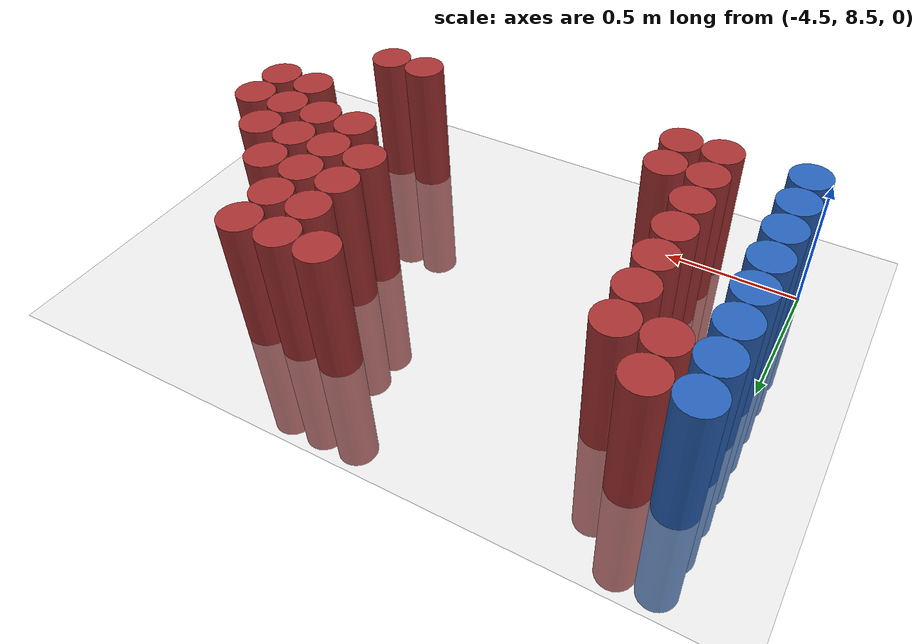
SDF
<sdf version="1.6">
 <world name="default">
  <model name="ground_plane">
   <static>1</static>
   <link name="link">
    <collision name="collision">
     <geometry><plane><normal>0 0 1</normal><size>100 100</size></plane></geometry>
     <surface><friction><ode><mu>100</mu><mu2>50</mu2></ode></friction></surface>
    </collision>
    <visual name="visual">
     <cast_shadows>0</cast_shadows>
     <geometry><plane><normal>0 0 1</normal><size>100 100</size></plane></geometry>
     <material>
      <script><uri>file://media/materials/scripts/gazebo.material</uri><name>Gazebo/Grey</name></script>
     </material>
    </visual>
   </link>
  </model>
  <model name="unit_cylinder_118">
   <static>1</static>
   <pose>-4.425000 8.475000 0.000000 0.000000 0.000000 0.000000</pose>
   <link name="link">
    <inertial>
     <mass>1</mass>
     <inertia><ixx>0.145833</ixx><ixy>0</ixy><ixz>0</ixz><iyy>0.145833</iyy><iyz>0</iyz><izz>0.125</izz></inertia>
    </inertial>
    <collision name="collision">
     <geometry><cylinder><radius>0.075000</radius><length>1</length></cylinder></geometry>
    </collision>
    <visual name="visual">
     <geometry><cylinder><radius>0.075000</radius><length>1</length></cylinder></geometry>
     <material>
      <ambient>0.152000 0.379000 0.720000 1</ambient>
      <diffuse>0.152000 0.379000 0.720000 1</diffuse>
     </material>
     <material>
      <script><name>Gazebo/Grey</name><uri>file://media/materials/scripts/gazebo.material</uri></script>
     </material>
    </visual>
    <sensor name="sensor_contact" type="contact"><contact><collision>collision</collision></contact></sensor>
   </link>
   <plugin filename="gz-sim-touchplugin-system" name="gz::sim::systems::TouchPlugin">
    <target>robot</target>
    <namespace>robot</namespace>
    <time>0.001</time>
    <enabled>true</enabled>
   </plugin>
  </model>
  <model name="unit_cylinder_119">
   <static>1</static>
   <pose>-4.425000 8.625000 0.000000 0.000000 0.000000 0.000000</pose>
   <link name="link">
    <inertial>
     <mass>1</mass>
     <inertia><ixx>0.145833</ixx><ixy>0</ixy><ixz>0</ixz><iyy>0.145833</iyy><iyz>0</iyz><izz>0.125</izz></inertia>
    </inertial>
    <collision name="collision">
     <geometry><cylinder><radius>0.075000</radius><length>1</length></cylinder></geometry>
    </collision>
    <visual name="visual">
     <geometry><cylinder><radius>0.075000</radius><length>1</length></cylinder></geometry>
     <material>
      <ambient>0.152000 0.379000 0.720000 1</ambient>
      <diffuse>0.152000 0.379000 0.720000 1</diffuse>
     </material>
     <material>
      <script><name>Gazebo/Grey</name><uri>file://media/materials/scripts/gazebo.material</uri></script>
     </material>
    </visual>
    <sensor name="sensor_contact" type="contact"><contact><collision>collision</collision></contact></sensor>
   </link>
   <plugin filename="gz-sim-touchplugin-system" name="gz::sim::systems::TouchPlugin">
    <target>robot</target>
    <namespace>robot</namespace>
    <time>0.001</time>
    <enabled>true</enabled>
   </plugin>
  </model>
  <model name="unit_cylinder_120">
   <static>1</static>
   <pose>-4.425000 8.775000 0.000000 0.000000 0.000000 0.000000</pose>
   <link name="link">
    <inertial>
     <mass>1</mass>
     <inertia><ixx>0.145833</ixx><ixy>0</ixy><ixz>0</ixz><iyy>0.145833</iyy><iyz>0</iyz><izz>0.125</izz></inertia>
    </inertial>
    <collision name="collision">
     <geometry><cylinder><radius>0.075000</radius><length>1</length></cylinder></geometry>
    </collision>
    <visual name="visual">
     <geometry><cylinder><radius>0.075000</radius><length>1</length></cylinder></geometry>
     <material>
      <ambient>0.152000 0.379000 0.720000 1</ambient>
      <diffuse>0.152000 0.379000 0.720000 1</diffuse>
     </material>
     <material>
      <script><name>Gazebo/Grey</name><uri>file://media/materials/scripts/gazebo.material</uri></script>
     </material>
    </visual>
    <sensor name="sensor_contact" type="contact"><contact><collision>collision</collision></contact></sensor>
   </link>
   <plugin filename="gz-sim-touchplugin-system" name="gz::sim::systems::TouchPlugin">
    <target>robot</target>
    <namespace>robot</namespace>
    <time>0.001</time>
    <enabled>true</enabled>
   </plugin>
  </model>
  <model name="unit_cylinder_121">
   <static>1</static>
   <pose>-4.425000 8.925000 0.000000 0.000000 0.000000 0.000000</pose>
   <link name="link">
    <inertial>
     <mass>1</mass>
     <inertia><ixx>0.145833</ixx><ixy>0</ixy><ixz>0</ixz><iyy>0.145833</iyy><iyz>0</iyz><izz>0.125</izz></inertia>
    </inertial>
    <collision name="collision">
     <geometry><cylinder><radius>0.075000</radius><length>1</length></cylinder></geometry>
    </collision>
    <visual name="visual">
     <geometry><cylinder><radius>0.075000</radius><length>1</length></cylinder></geometry>
     <material>
      <ambient>0.152000 0.379000 0.720000 1</ambient>
      <diffuse>0.152000 0.379000 0.720000 1</diffuse>
     </material>
     <material>
      <script><name>Gazebo/Grey</name><uri>file://media/materials/scripts/gazebo.material</uri></script>
     </material>
    </visual>
    <sensor name="sensor_contact" type="contact"><contact><collision>collision</collision></contact></sensor>
   </link>
   <plugin filename="gz-sim-touchplugin-system" name="gz::sim::systems::TouchPlugin">
    <target>robot</target>
    <namespace>robot</namespace>
    <time>0.001</time>
    <enabled>true</enabled>
   </plugin>
  </model>
  <model name="unit_cylinder_122">
   <static>1</static>
   <pose>-4.425000 9.075000 0.000000 0.000000 0.000000 0.000000</pose>
   <link name="link">
    <inertial>
     <mass>1</mass>
     <inertia><ixx>0.145833</ixx><ixy>0</ixy><ixz>0</ixz><iyy>0.145833</iyy><iyz>0</iyz><izz>0.125</izz></inertia>
    </inertial>
    <collision name="collision">
     <geometry><cylinder><radius>0.075000</radius><length>1</length></cylinder></geometry>
    </collision>
    <visual name="visual">
     <geometry><cylinder><radius>0.075000</radius><length>1</length></cylinder></geometry>
     <material>
      <ambient>0.152000 0.379000 0.720000 1</ambient>
      <diffuse>0.152000 0.379000 0.720000 1</diffuse>
     </material>
     <material>
      <script><name>Gazebo/Grey</name><uri>file://media/materials/scripts/gazebo.material</uri></script>
     </material>
    </visual>
    <sensor name="sensor_contact" type="contact"><contact><collision>collision</collision></contact></sensor>
   </link>
   <plugin filename="gz-sim-touchplugin-system" name="gz::sim::systems::TouchPlugin">
    <target>robot</target>
    <namespace>robot</namespace>
    <time>0.001</time>
    <enabled>true</enabled>
   </plugin>
  </model>
  <model name="unit_cylinder_123">
   <static>1</static>
   <pose>-4.425000 9.225000 0.000000 0.000000 0.000000 0.000000</pose>
   <link name="link">
    <inertial>
     <mass>1</mass>
     <inertia><ixx>0.145833</ixx><ixy>0</ixy><ixz>0</ixz><iyy>0.145833</iyy><iyz>0</iyz><izz>0.125</izz></inertia>
    </inertial>
    <collision name="collision">
     <geometry><cylinder><radius>0.075000</radius><length>1</length></cylinder></geometry>
    </collision>
    <visual name="visual">
     <geometry><cylinder><radius>0.075000</radius><length>1</length></cylinder></geometry>
     <material>
      <ambient>0.152000 0.379000 0.720000 1</ambient>
      <diffuse>0.152000 0.379000 0.720000 1</diffuse>
     </material>
     <material>
      <script><name>Gazebo/Grey</name><uri>file://media/materials/scripts/gazebo.material</uri></script>
     </material>
    </visual>
    <sensor name="sensor_contact" type="contact"><contact><collision>collision</collision></contact></sensor>
   </link>
   <plugin filename="gz-sim-touchplugin-system" name="gz::sim::systems::TouchPlugin">
    <target>robot</target>
    <namespace>robot</namespace>
    <time>0.001</time>
    <enabled>true</enabled>
   </plugin>
  </model>
  <model name="unit_cylinder_124">
   <static>1</static>
   <pose>-4.425000 9.375000 0.000000 0.000000 0.000000 0.000000</pose>
   <link name="link">
    <inertial>
     <mass>1</mass>
     <inertia><ixx>0.145833</ixx><ixy>0</ixy><ixz>0</ixz><iyy>0.145833</iyy><iyz>0</iyz><izz>0.125</izz></inertia>
    </inertial>
    <collision name="collision">
     <geometry><cylinder><radius>0.075000</radius><length>1</length></cylinder></geometry>
    </collision>
    <visual name="visual">
     <geometry><cylinder><radius>0.075000</radius><length>1</length></cylinder></geometry>
     <material>
      <ambient>0.152000 0.379000 0.720000 1</ambient>
      <diffuse>0.152000 0.379000 0.720000 1</diffuse>
     </material>
     <material>
      <script><name>Gazebo/Grey</name><uri>file://media/materials/scripts/gazebo.material</uri></script>
     </material>
    </visual>
    <sensor name="sensor_contact" type="contact"><contact><collision>collision</collision></contact></sensor>
   </link>
   <plugin filename="gz-sim-touchplugin-system" name="gz::sim::systems::TouchPlugin">
    <target>robot</target>
    <namespace>robot</namespace>
    <time>0.001</time>
    <enabled>true</enabled>
   </plugin>
  </model>
  <model name="unit_cylinder_125">
   <static>1</static>
   <pose>-4.425000 9.525000 0.000000 0.000000 0.000000 0.000000</pose>
   <link name="link">
    <inertial>
     <mass>1</mass>
     <inertia><ixx>0.145833</ixx><ixy>0</ixy><ixz>0</ixz><iyy>0.145833</iyy><iyz>0</iyz><izz>0.125</izz></inertia>
    </inertial>
    <collision name="collision">
     <geometry><cylinder><radius>0.075000</radius><length>1</length></cylinder></geometry>
    </collision>
    <visual name="visual">
     <geometry><cylinder><radius>0.075000</radius><length>1</length></cylinder></geometry>
     <material>
      <ambient>0.152000 0.379000 0.720000 1</ambient>
      <diffuse>0.152000 0.379000 0.720000 1</diffuse>
     </material>
     <material>
      <script><name>Gazebo/Grey</name><uri>file://media/materials/scripts/gazebo.material</uri></script>
     </material>
    </visual>
    <sensor name="sensor_contact" type="contact"><contact><collision>collision</collision></contact></sensor>
   </link>
   <plugin filename="gz-sim-touchplugin-system" name="gz::sim::systems::TouchPlugin">
    <target>robot</target>
    <namespace>robot</namespace>
    <time>0.001</time>
    <enabled>true</enabled>
   </plugin>
  </model>
  <model name="unit_cylinder_137">
   <static>1</static>
   <pose>-4.275000 9.375000 0.000000 0.000000 0.000000 0.000000</pose>
   <link name="link">
    <inertial>
     <mass>1</mass>
     <inertia><ixx>0.145833</ixx><ixy>0</ixy><ixz>0</ixz><iyy>0.145833</iyy><iyz>0</iyz><izz>0.125</izz></inertia>
    </inertial>
    <collision name="collision">
     <geometry><cylinder><radius>0.075000</radius><length>1</length></cylinder></geometry>
    </collision>
    <visual name="visual">
     <geometry><cylinder><radius>0.075000</radius><length>1</length></cylinder></geometry>
     <material>
      <ambient>0.648000 0.192000 0.192000 1</ambient>
      <diffuse>0.648000 0.192000 0.192000 1</diffuse>
     </material>
     <material>
      <script><name>Gazebo/Grey</name><uri>file://media/materials/scripts/gazebo.material</uri></script>
     </material>
    </visual>
    <sensor name="sensor_contact" type="contact"><contact><collision>collision</collision></contact></sensor>
   </link>
   <plugin filename="gz-sim-touchplugin-system" name="gz::sim::systems::TouchPlugin">
    <target>robot</target>
    <namespace>robot</namespace>
    <time>0.001</time>
    <enabled>true</enabled>
   </plugin>
  </model>
  <model name="unit_cylinder_138">
   <static>1</static>
   <pose>-4.275000 9.525000 0.000000 0.000000 0.000000 0.000000</pose>
   <link name="link">
    <inertial>
     <mass>1</mass>
     <inertia><ixx>0.145833</ixx><ixy>0</ixy><ixz>0</ixz><iyy>0.145833</iyy><iyz>0</iyz><izz>0.125</izz></inertia>
    </inertial>
    <collision name="collision">
     <geometry><cylinder><radius>0.075000</radius><length>1</length></cylinder></geometry>
    </collision>
    <visual name="visual">
     <geometry><cylinder><radius>0.075000</radius><length>1</length></cylinder></geometry>
     <material>
      <ambient>0.648000 0.192000 0.192000 1</ambient>
      <diffuse>0.648000 0.192000 0.192000 1</diffuse>
     </material>
     <material>
      <script><name>Gazebo/Grey</name><uri>file://media/materials/scripts/gazebo.material</uri></script>
     </material>
    </visual>
    <sensor name="sensor_contact" type="contact"><contact><collision>collision</collision></contact></sensor>
   </link>
   <plugin filename="gz-sim-touchplugin-system" name="gz::sim::systems::TouchPlugin">
    <target>robot</target>
    <namespace>robot</namespace>
    <time>0.001</time>
    <enabled>true</enabled>
   </plugin>
  </model>
  <model name="unit_cylinder_142">
   <static>1</static>
   <pose>-4.125000 8.475000 0.000000 0.000000 0.000000 0.000000</pose>
   <link name="link">
    <inertial>
     <mass>1</mass>
     <inertia><ixx>0.145833</ixx><ixy>0</ixy><ixz>0</ixz><iyy>0.145833</iyy><iyz>0</iyz><izz>0.125</izz></inertia>
    </inertial>
    <collision name="collision">
     <geometry><cylinder><radius>0.075000</radius><length>1</length></cylinder></geometry>
    </collision>
    <visual name="visual">
     <geometry><cylinder><radius>0.075000</radius><length>1</length></cylinder></geometry>
     <material>
      <ambient>0.648000 0.192000 0.192000 1</ambient>
      <diffuse>0.648000 0.192000 0.192000 1</diffuse>
     </material>
     <material>
      <script><name>Gazebo/Grey</name><uri>file://media/materials/scripts/gazebo.material</uri></script>
     </material>
    </visual>
    <sensor name="sensor_contact" type="contact"><contact><collision>collision</collision></contact></sensor>
   </link>
   <plugin filename="gz-sim-touchplugin-system" name="gz::sim::systems::TouchPlugin">
    <target>robot</target>
    <namespace>robot</namespace>
    <time>0.001</time>
    <enabled>true</enabled>
   </plugin>
  </model>
  <model name="unit_cylinder_143">
   <static>1</static>
   <pose>-4.125000 8.625000 0.000000 0.000000 0.000000 0.000000</pose>
   <link name="link">
    <inertial>
     <mass>1</mass>
     <inertia><ixx>0.145833</ixx><ixy>0</ixy><ixz>0</ixz><iyy>0.145833</iyy><iyz>0</iyz><izz>0.125</izz></inertia>
    </inertial>
    <collision name="collision">
     <geometry><cylinder><radius>0.075000</radius><length>1</length></cylinder></geometry>
    </collision>
    <visual name="visual">
     <geometry><cylinder><radius>0.075000</radius><length>1</length></cylinder></geometry>
     <material>
      <ambient>0.648000 0.192000 0.192000 1</ambient>
      <diffuse>0.648000 0.192000 0.192000 1</diffuse>
     </material>
     <material>
      <script><name>Gazebo/Grey</name><uri>file://media/materials/scripts/gazebo.material</uri></script>
     </material>
    </visual>
    <sensor name="sensor_contact" type="contact"><contact><collision>collision</collision></contact></sensor>
   </link>
   <plugin filename="gz-sim-touchplugin-system" name="gz::sim::systems::TouchPlugin">
    <target>robot</target>
    <namespace>robot</namespace>
    <time>0.001</time>
    <enabled>true</enabled>
   </plugin>
  </model>
  <model name="unit_cylinder_144">
   <static>1</static>
   <pose>-4.125000 8.775000 0.000000 0.000000 0.000000 0.000000</pose>
   <link name="link">
    <inertial>
     <mass>1</mass>
     <inertia><ixx>0.145833</ixx><ixy>0</ixy><ixz>0</ixz><iyy>0.145833</iyy><iyz>0</iyz><izz>0.125</izz></inertia>
    </inertial>
    <collision name="collision">
     <geometry><cylinder><radius>0.075000</radius><length>1</length></cylinder></geometry>
    </collision>
    <visual name="visual">
     <geometry><cylinder><radius>0.075000</radius><length>1</length></cylinder></geometry>
     <material>
      <ambient>0.648000 0.192000 0.192000 1</ambient>
      <diffuse>0.648000 0.192000 0.192000 1</diffuse>
     </material>
     <material>
      <script><name>Gazebo/Grey</name><uri>file://media/materials/scripts/gazebo.material</uri></script>
     </material>
    </visual>
    <sensor name="sensor_contact" type="contact"><contact><collision>collision</collision></contact></sensor>
   </link>
   <plugin filename="gz-sim-touchplugin-system" name="gz::sim::systems::TouchPlugin">
    <target>robot</target>
    <namespace>robot</namespace>
    <time>0.001</time>
    <enabled>true</enabled>
   </plugin>
  </model>
  <model name="unit_cylinder_145">
   <static>1</static>
   <pose>-4.125000 8.925000 0.000000 0.000000 0.000000 0.000000</pose>
   <link name="link">
    <inertial>
     <mass>1</mass>
     <inertia><ixx>0.145833</ixx><ixy>0</ixy><ixz>0</ixz><iyy>0.145833</iyy><iyz>0</iyz><izz>0.125</izz></inertia>
    </inertial>
    <collision name="collision">
     <geometry><cylinder><radius>0.075000</radius><length>1</length></cylinder></geometry>
    </collision>
    <visual name="visual">
     <geometry><cylinder><radius>0.075000</radius><length>1</length></cylinder></geometry>
     <material>
      <ambient>0.648000 0.192000 0.192000 1</ambient>
      <diffuse>0.648000 0.192000 0.192000 1</diffuse>
     </material>
     <material>
      <script><name>Gazebo/Grey</name><uri>file://media/materials/scripts/gazebo.material</uri></script>
     </material>
    </visual>
    <sensor name="sensor_contact" type="contact"><contact><collision>collision</collision></contact></sensor>
   </link>
   <plugin filename="gz-sim-touchplugin-system" name="gz::sim::systems::TouchPlugin">
    <target>robot</target>
    <namespace>robot</namespace>
    <time>0.001</time>
    <enabled>true</enabled>
   </plugin>
  </model>
  <model name="unit_cylinder_146">
   <static>1</static>
   <pose>-4.125000 9.075000 0.000000 0.000000 0.000000 0.000000</pose>
   <link name="link">
    <inertial>
     <mass>1</mass>
     <inertia><ixx>0.145833</ixx><ixy>0</ixy><ixz>0</ixz><iyy>0.145833</iyy><iyz>0</iyz><izz>0.125</izz></inertia>
    </inertial>
    <collision name="collision">
     <geometry><cylinder><radius>0.075000</radius><length>1</length></cylinder></geometry>
    </collision>
    <visual name="visual">
     <geometry><cylinder><radius>0.075000</radius><length>1</length></cylinder></geometry>
     <material>
      <ambient>0.648000 0.192000 0.192000 1</ambient>
      <diffuse>0.648000 0.192000 0.192000 1</diffuse>
     </material>
     <material>
      <script><name>Gazebo/Grey</name><uri>file://media/materials/scripts/gazebo.material</uri></script>
     </material>
    </visual>
    <sensor name="sensor_contact" type="contact"><contact><collision>collision</collision></contact></sensor>
   </link>
   <plugin filename="gz-sim-touchplugin-system" name="gz::sim::systems::TouchPlugin">
    <target>robot</target>
    <namespace>robot</namespace>
    <time>0.001</time>
    <enabled>true</enabled>
   </plugin>
  </model>
  <model name="unit_cylinder_147">
   <static>1</static>
   <pose>-4.125000 9.225000 0.000000 0.000000 0.000000 0.000000</pose>
   <link name="link">
    <inertial>
     <mass>1</mass>
     <inertia><ixx>0.145833</ixx><ixy>0</ixy><ixz>0</ixz><iyy>0.145833</iyy><iyz>0</iyz><izz>0.125</izz></inertia>
    </inertial>
    <collision name="collision">
     <geometry><cylinder><radius>0.075000</radius><length>1</length></cylinder></geometry>
    </collision>
    <visual name="visual">
     <geometry><cylinder><radius>0.075000</radius><length>1</length></cylinder></geometry>
     <material>
      <ambient>0.648000 0.192000 0.192000 1</ambient>
      <diffuse>0.648000 0.192000 0.192000 1</diffuse>
     </material>
     <material>
      <script><name>Gazebo/Grey</name><uri>file://media/materials/scripts/gazebo.material</uri></script>
     </material>
    </visual>
    <sensor name="sensor_contact" type="contact"><contact><collision>collision</collision></contact></sensor>
   </link>
   <plugin filename="gz-sim-touchplugin-system" name="gz::sim::systems::TouchPlugin">
    <target>robot</target>
    <namespace>robot</namespace>
    <time>0.001</time>
    <enabled>true</enabled>
   </plugin>
  </model>
  <model name="unit_cylinder_148">
   <static>1</static>
   <pose>-4.125000 9.375000 0.000000 0.000000 0.000000 0.000000</pose>
   <link name="link">
    <inertial>
     <mass>1</mass>
     <inertia><ixx>0.145833</ixx><ixy>0</ixy><ixz>0</ixz><iyy>0.145833</iyy><iyz>0</iyz><izz>0.125</izz></inertia>
    </inertial>
    <collision name="collision">
     <geometry><cylinder><radius>0.075000</radius><length>1</length></cylinder></geometry>
    </collision>
    <visual name="visual">
     <geometry><cylinder><radius>0.075000</radius><length>1</length></cylinder></geometry>
     <material>
      <ambient>0.648000 0.192000 0.192000 1</ambient>
      <diffuse>0.648000 0.192000 0.192000 1</diffuse>
     </material>
     <material>
      <script><name>Gazebo/Grey</name><uri>file://media/materials/scripts/gazebo.material</uri></script>
     </material>
    </visual>
    <sensor name="sensor_contact" type="contact"><contact><collision>collision</collision></contact></sensor>
   </link>
   <plugin filename="gz-sim-touchplugin-system" name="gz::sim::systems::TouchPlugin">
    <target>robot</target>
    <namespace>robot</namespace>
    <time>0.001</time>
    <enabled>true</enabled>
   </plugin>
  </model>
  <model name="unit_cylinder_153">
   <static>1</static>
   <pose>-3.975000 8.475000 0.000000 0.000000 0.000000 0.000000</pose>
   <link name="link">
    <inertial>
     <mass>1</mass>
     <inertia><ixx>0.145833</ixx><ixy>0</ixy><ixz>0</ixz><iyy>0.145833</iyy><iyz>0</iyz><izz>0.125</izz></inertia>
    </inertial>
    <collision name="collision">
     <geometry><cylinder><radius>0.075000</radius><length>1</length></cylinder></geometry>
    </collision>
    <visual name="visual">
     <geometry><cylinder><radius>0.075000</radius><length>1</length></cylinder></geometry>
     <material>
      <ambient>0.648000 0.192000 0.192000 1</ambient>
      <diffuse>0.648000 0.192000 0.192000 1</diffuse>
     </material>
     <material>
      <script><name>Gazebo/Grey</name><uri>file://media/materials/scripts/gazebo.material</uri></script>
     </material>
    </visual>
    <sensor name="sensor_contact" type="contact"><contact><collision>collision</collision></contact></sensor>
   </link>
   <plugin filename="gz-sim-touchplugin-system" name="gz::sim::systems::TouchPlugin">
    <target>robot</target>
    <namespace>robot</namespace>
    <time>0.001</time>
    <enabled>true</enabled>
   </plugin>
  </model>
  <model name="unit_cylinder_154">
   <static>1</static>
   <pose>-3.975000 8.625000 0.000000 0.000000 0.000000 0.000000</pose>
   <link name="link">
    <inertial>
     <mass>1</mass>
     <inertia><ixx>0.145833</ixx><ixy>0</ixy><ixz>0</ixz><iyy>0.145833</iyy><iyz>0</iyz><izz>0.125</izz></inertia>
    </inertial>
    <collision name="collision">
     <geometry><cylinder><radius>0.075000</radius><length>1</length></cylinder></geometry>
    </collision>
    <visual name="visual">
     <geometry><cylinder><radius>0.075000</radius><length>1</length></cylinder></geometry>
     <material>
      <ambient>0.648000 0.192000 0.192000 1</ambient>
      <diffuse>0.648000 0.192000 0.192000 1</diffuse>
     </material>
     <material>
      <script><name>Gazebo/Grey</name><uri>file://media/materials/scripts/gazebo.material</uri></script>
     </material>
    </visual>
    <sensor name="sensor_contact" type="contact"><contact><collision>collision</collision></contact></sensor>
   </link>
   <plugin filename="gz-sim-touchplugin-system" name="gz::sim::systems::TouchPlugin">
    <target>robot</target>
    <namespace>robot</namespace>
    <time>0.001</time>
    <enabled>true</enabled>
   </plugin>
  </model>
  <model name="unit_cylinder_156">
   <static>1</static>
   <pose>-3.225000 9.525000 0.000000 0.000000 0.000000 0.000000</pose>
   <link name="link">
    <inertial>
     <mass>1</mass>
     <inertia><ixx>0.145833</ixx><ixy>0</ixy><ixz>0</ixz><iyy>0.145833</iyy><iyz>0</iyz><izz>0.125</izz></inertia>
    </inertial>
    <collision name="collision">
     <geometry><cylinder><radius>0.075000</radius><length>1</length></cylinder></geometry>
    </collision>
    <visual name="visual">
     <geometry><cylinder><radius>0.075000</radius><length>1</length></cylinder></geometry>
     <material>
      <ambient>0.648000 0.192000 0.192000 1</ambient>
      <diffuse>0.648000 0.192000 0.192000 1</diffuse>
     </material>
     <material>
      <script><name>Gazebo/Grey</name><uri>file://media/materials/scripts/gazebo.material</uri></script>
     </material>
    </visual>
    <sensor name="sensor_contact" type="contact"><contact><collision>collision</collision></contact></sensor>
   </link>
   <plugin filename="gz-sim-touchplugin-system" name="gz::sim::systems::TouchPlugin">
    <target>robot</target>
    <namespace>robot</namespace>
    <time>0.001</time>
    <enabled>true</enabled>
   </plugin>
  </model>
  <model name="unit_cylinder_160">
   <static>1</static>
   <pose>-3.075000 9.075000 0.000000 0.000000 0.000000 0.000000</pose>
   <link name="link">
    <inertial>
     <mass>1</mass>
     <inertia><ixx>0.145833</ixx><ixy>0</ixy><ixz>0</ixz><iyy>0.145833</iyy><iyz>0</iyz><izz>0.125</izz></inertia>
    </inertial>
    <collision name="collision">
     <geometry><cylinder><radius>0.075000</radius><length>1</length></cylinder></geometry>
    </collision>
    <visual name="visual">
     <geometry><cylinder><radius>0.075000</radius><length>1</length></cylinder></geometry>
     <material>
      <ambient>0.648000 0.192000 0.192000 1</ambient>
      <diffuse>0.648000 0.192000 0.192000 1</diffuse>
     </material>
     <material>
      <script><name>Gazebo/Grey</name><uri>file://media/materials/scripts/gazebo.material</uri></script>
     </material>
    </visual>
    <sensor name="sensor_contact" type="contact"><contact><collision>collision</collision></contact></sensor>
   </link>
   <plugin filename="gz-sim-touchplugin-system" name="gz::sim::systems::TouchPlugin">
    <target>robot</target>
    <namespace>robot</namespace>
    <time>0.001</time>
    <enabled>true</enabled>
   </plugin>
  </model>
  <model name="unit_cylinder_161">
   <static>1</static>
   <pose>-3.075000 9.225000 0.000000 0.000000 0.000000 0.000000</pose>
   <link name="link">
    <inertial>
     <mass>1</mass>
     <inertia><ixx>0.145833</ixx><ixy>0</ixy><ixz>0</ixz><iyy>0.145833</iyy><iyz>0</iyz><izz>0.125</izz></inertia>
    </inertial>
    <collision name="collision">
     <geometry><cylinder><radius>0.075000</radius><length>1</length></cylinder></geometry>
    </collision>
    <visual name="visual">
     <geometry><cylinder><radius>0.075000</radius><length>1</length></cylinder></geometry>
     <material>
      <ambient>0.648000 0.192000 0.192000 1</ambient>
      <diffuse>0.648000 0.192000 0.192000 1</diffuse>
     </material>
     <material>
      <script><name>Gazebo/Grey</name><uri>file://media/materials/scripts/gazebo.material</uri></script>
     </material>
    </visual>
    <sensor name="sensor_contact" type="contact"><contact><collision>collision</collision></contact></sensor>
   </link>
   <plugin filename="gz-sim-touchplugin-system" name="gz::sim::systems::TouchPlugin">
    <target>robot</target>
    <namespace>robot</namespace>
    <time>0.001</time>
    <enabled>true</enabled>
   </plugin>
  </model>
  <model name="unit_cylinder_162">
   <static>1</static>
   <pose>-3.075000 9.375000 0.000000 0.000000 0.000000 0.000000</pose>
   <link name="link">
    <inertial>
     <mass>1</mass>
     <inertia><ixx>0.145833</ixx><ixy>0</ixy><ixz>0</ixz><iyy>0.145833</iyy><iyz>0</iyz><izz>0.125</izz></inertia>
    </inertial>
    <collision name="collision">
     <geometry><cylinder><radius>0.075000</radius><length>1</length></cylinder></geometry>
    </collision>
    <visual name="visual">
     <geometry><cylinder><radius>0.075000</radius><length>1</length></cylinder></geometry>
     <material>
      <ambient>0.648000 0.192000 0.192000 1</ambient>
      <diffuse>0.648000 0.192000 0.192000 1</diffuse>
     </material>
     <material>
      <script><name>Gazebo/Grey</name><uri>file://media/materials/scripts/gazebo.material</uri></script>
     </material>
    </visual>
    <sensor name="sensor_contact" type="contact"><contact><collision>collision</collision></contact></sensor>
   </link>
   <plugin filename="gz-sim-touchplugin-system" name="gz::sim::systems::TouchPlugin">
    <target>robot</target>
    <namespace>robot</namespace>
    <time>0.001</time>
    <enabled>true</enabled>
   </plugin>
  </model>
  <model name="unit_cylinder_163">
   <static>1</static>
   <pose>-3.075000 9.525000 0.000000 0.000000 0.000000 0.000000</pose>
   <link name="link">
    <inertial>
     <mass>1</mass>
     <inertia><ixx>0.145833</ixx><ixy>0</ixy><ixz>0</ixz><iyy>0.145833</iyy><iyz>0</iyz><izz>0.125</izz></inertia>
    </inertial>
    <collision name="collision">
     <geometry><cylinder><radius>0.075000</radius><length>1</length></cylinder></geometry>
    </collision>
    <visual name="visual">
     <geometry><cylinder><radius>0.075000</radius><length>1</length></cylinder></geometry>
     <material>
      <ambient>0.648000 0.192000 0.192000 1</ambient>
      <diffuse>0.648000 0.192000 0.192000 1</diffuse>
     </material>
     <material>
      <script><name>Gazebo/Grey</name><uri>file://media/materials/scripts/gazebo.material</uri></script>
     </material>
    </visual>
    <sensor name="sensor_contact" type="contact"><contact><collision>collision</collision></contact></sensor>
   </link>
   <plugin filename="gz-sim-touchplugin-system" name="gz::sim::systems::TouchPlugin">
    <target>robot</target>
    <namespace>robot</namespace>
    <time>0.001</time>
    <enabled>true</enabled>
   </plugin>
  </model>
  <model name="unit_cylinder_167">
   <static>1</static>
   <pose>-2.925000 8.475000 0.000000 0.000000 0.000000 0.000000</pose>
   <link name="link">
    <inertial>
     <mass>1</mass>
     <inertia><ixx>0.145833</ixx><ixy>0</ixy><ixz>0</ixz><iyy>0.145833</iyy><iyz>0</iyz><izz>0.125</izz></inertia>
    </inertial>
    <collision name="collision">
     <geometry><cylinder><radius>0.075000</radius><length>1</length></cylinder></geometry>
    </collision>
    <visual name="visual">
     <geometry><cylinder><radius>0.075000</radius><length>1</length></cylinder></geometry>
     <material>
      <ambient>0.648000 0.192000 0.192000 1</ambient>
      <diffuse>0.648000 0.192000 0.192000 1</diffuse>
     </material>
     <material>
      <script><name>Gazebo/Grey</name><uri>file://media/materials/scripts/gazebo.material</uri></script>
     </material>
    </visual>
    <sensor name="sensor_contact" type="contact"><contact><collision>collision</collision></contact></sensor>
   </link>
   <plugin filename="gz-sim-touchplugin-system" name="gz::sim::systems::TouchPlugin">
    <target>robot</target>
    <namespace>robot</namespace>
    <time>0.001</time>
    <enabled>true</enabled>
   </plugin>
  </model>
  <model name="unit_cylinder_168">
   <static>1</static>
   <pose>-2.925000 8.925000 0.000000 0.000000 0.000000 0.000000</pose>
   <link name="link">
    <inertial>
     <mass>1</mass>
     <inertia><ixx>0.145833</ixx><ixy>0</ixy><ixz>0</ixz><iyy>0.145833</iyy><iyz>0</iyz><izz>0.125</izz></inertia>
    </inertial>
    <collision name="collision">
     <geometry><cylinder><radius>0.075000</radius><length>1</length></cylinder></geometry>
    </collision>
    <visual name="visual">
     <geometry><cylinder><radius>0.075000</radius><length>1</length></cylinder></geometry>
     <material>
      <ambient>0.648000 0.192000 0.192000 1</ambient>
      <diffuse>0.648000 0.192000 0.192000 1</diffuse>
     </material>
     <material>
      <script><name>Gazebo/Grey</name><uri>file://media/materials/scripts/gazebo.material</uri></script>
     </material>
    </visual>
    <sensor name="sensor_contact" type="contact"><contact><collision>collision</collision></contact></sensor>
   </link>
   <plugin filename="gz-sim-touchplugin-system" name="gz::sim::systems::TouchPlugin">
    <target>robot</target>
    <namespace>robot</namespace>
    <time>0.001</time>
    <enabled>true</enabled>
   </plugin>
  </model>
  <model name="unit_cylinder_169">
   <static>1</static>
   <pose>-2.925000 9.075000 0.000000 0.000000 0.000000 0.000000</pose>
   <link name="link">
    <inertial>
     <mass>1</mass>
     <inertia><ixx>0.145833</ixx><ixy>0</ixy><ixz>0</ixz><iyy>0.145833</iyy><iyz>0</iyz><izz>0.125</izz></inertia>
    </inertial>
    <collision name="collision">
     <geometry><cylinder><radius>0.075000</radius><length>1</length></cylinder></geometry>
    </collision>
    <visual name="visual">
     <geometry><cylinder><radius>0.075000</radius><length>1</length></cylinder></geometry>
     <material>
      <ambient>0.648000 0.192000 0.192000 1</ambient>
      <diffuse>0.648000 0.192000 0.192000 1</diffuse>
     </material>
     <material>
      <script><name>Gazebo/Grey</name><uri>file://media/materials/scripts/gazebo.material</uri></script>
     </material>
    </visual>
    <sensor name="sensor_contact" type="contact"><contact><collision>collision</collision></contact></sensor>
   </link>
   <plugin filename="gz-sim-touchplugin-system" name="gz::sim::systems::TouchPlugin">
    <target>robot</target>
    <namespace>robot</namespace>
    <time>0.001</time>
    <enabled>true</enabled>
   </plugin>
  </model>
  <model name="unit_cylinder_170">
   <static>1</static>
   <pose>-2.925000 9.225000 0.000000 0.000000 0.000000 0.000000</pose>
   <link name="link">
    <inertial>
     <mass>1</mass>
     <inertia><ixx>0.145833</ixx><ixy>0</ixy><ixz>0</ixz><iyy>0.145833</iyy><iyz>0</iyz><izz>0.125</izz></inertia>
    </inertial>
    <collision name="collision">
     <geometry><cylinder><radius>0.075000</radius><length>1</length></cylinder></geometry>
    </collision>
    <visual name="visual">
     <geometry><cylinder><radius>0.075000</radius><length>1</length></cylinder></geometry>
     <material>
      <ambient>0.648000 0.192000 0.192000 1</ambient>
      <diffuse>0.648000 0.192000 0.192000 1</diffuse>
     </material>
     <material>
      <script><name>Gazebo/Grey</name><uri>file://media/materials/scripts/gazebo.material</uri></script>
     </material>
    </visual>
    <sensor name="sensor_contact" type="contact"><contact><collision>collision</collision></contact></sensor>
   </link>
   <plugin filename="gz-sim-touchplugin-system" name="gz::sim::systems::TouchPlugin">
    <target>robot</target>
    <namespace>robot</namespace>
    <time>0.001</time>
    <enabled>true</enabled>
   </plugin>
  </model>
  <model name="unit_cylinder_171">
   <static>1</static>
   <pose>-2.925000 9.375000 0.000000 0.000000 0.000000 0.000000</pose>
   <link name="link">
    <inertial>
     <mass>1</mass>
     <inertia><ixx>0.145833</ixx><ixy>0</ixy><ixz>0</ixz><iyy>0.145833</iyy><iyz>0</iyz><izz>0.125</izz></inertia>
    </inertial>
    <collision name="collision">
     <geometry><cylinder><radius>0.075000</radius><length>1</length></cylinder></geometry>
    </collision>
    <visual name="visual">
     <geometry><cylinder><radius>0.075000</radius><length>1</length></cylinder></geometry>
     <material>
      <ambient>0.648000 0.192000 0.192000 1</ambient>
      <diffuse>0.648000 0.192000 0.192000 1</diffuse>
     </material>
     <material>
      <script><name>Gazebo/Grey</name><uri>file://media/materials/scripts/gazebo.material</uri></script>
     </material>
    </visual>
    <sensor name="sensor_contact" type="contact"><contact><collision>collision</collision></contact></sensor>
   </link>
   <plugin filename="gz-sim-touchplugin-system" name="gz::sim::systems::TouchPlugin">
    <target>robot</target>
    <namespace>robot</namespace>
    <time>0.001</time>
    <enabled>true</enabled>
   </plugin>
  </model>
  <model name="unit_cylinder_172">
   <static>1</static>
   <pose>-2.925000 9.525000 0.000000 0.000000 0.000000 0.000000</pose>
   <link name="link">
    <inertial>
     <mass>1</mass>
     <inertia><ixx>0.145833</ixx><ixy>0</ixy><ixz>0</ixz><iyy>0.145833</iyy><iyz>0</iyz><izz>0.125</izz></inertia>
    </inertial>
    <collision name="collision">
     <geometry><cylinder><radius>0.075000</radius><length>1</length></cylinder></geometry>
    </collision>
    <visual name="visual">
     <geometry><cylinder><radius>0.075000</radius><length>1</length></cylinder></geometry>
     <material>
      <ambient>0.648000 0.192000 0.192000 1</ambient>
      <diffuse>0.648000 0.192000 0.192000 1</diffuse>
     </material>
     <material>
      <script><name>Gazebo/Grey</name><uri>file://media/materials/scripts/gazebo.material</uri></script>
     </material>
    </visual>
    <sensor name="sensor_contact" type="contact"><contact><collision>collision</collision></contact></sensor>
   </link>
   <plugin filename="gz-sim-touchplugin-system" name="gz::sim::systems::TouchPlugin">
    <target>robot</target>
    <namespace>robot</namespace>
    <time>0.001</time>
    <enabled>true</enabled>
   </plugin>
  </model>
  <model name="unit_cylinder_181">
   <static>1</static>
   <pose>-2.775000 8.475000 0.000000 0.000000 0.000000 0.000000</pose>
   <link name="link">
    <inertial>
     <mass>1</mass>
     <inertia><ixx>0.145833</ixx><ixy>0</ixy><ixz>0</ixz><iyy>0.145833</iyy><iyz>0</iyz><izz>0.125</izz></inertia>
    </inertial>
    <collision name="collision">
     <geometry><cylinder><radius>0.075000</radius><length>1</length></cylinder></geometry>
    </collision>
    <visual name="visual">
     <geometry><cylinder><radius>0.075000</radius><length>1</length></cylinder></geometry>
     <material>
      <ambient>0.648000 0.192000 0.192000 1</ambient>
      <diffuse>0.648000 0.192000 0.192000 1</diffuse>
     </material>
     <material>
      <script><name>Gazebo/Grey</name><uri>file://media/materials/scripts/gazebo.material</uri></script>
     </material>
    </visual>
    <sensor name="sensor_contact" type="contact"><contact><collision>collision</collision></contact></sensor>
   </link>
   <plugin filename="gz-sim-touchplugin-system" name="gz::sim::systems::TouchPlugin">
    <target>robot</target>
    <namespace>robot</namespace>
    <time>0.001</time>
    <enabled>true</enabled>
   </plugin>
  </model>
  <model name="unit_cylinder_182">
   <static>1</static>
   <pose>-2.775000 8.925000 0.000000 0.000000 0.000000 0.000000</pose>
   <link name="link">
    <inertial>
     <mass>1</mass>
     <inertia><ixx>0.145833</ixx><ixy>0</ixy><ixz>0</ixz><iyy>0.145833</iyy><iyz>0</iyz><izz>0.125</izz></inertia>
    </inertial>
    <collision name="collision">
     <geometry><cylinder><radius>0.075000</radius><length>1</length></cylinder></geometry>
    </collision>
    <visual name="visual">
     <geometry><cylinder><radius>0.075000</radius><length>1</length></cylinder></geometry>
     <material>
      <ambient>0.648000 0.192000 0.192000 1</ambient>
      <diffuse>0.648000 0.192000 0.192000 1</diffuse>
     </material>
     <material>
      <script><name>Gazebo/Grey</name><uri>file://media/materials/scripts/gazebo.material</uri></script>
     </material>
    </visual>
    <sensor name="sensor_contact" type="contact"><contact><collision>collision</collision></contact></sensor>
   </link>
   <plugin filename="gz-sim-touchplugin-system" name="gz::sim::systems::TouchPlugin">
    <target>robot</target>
    <namespace>robot</namespace>
    <time>0.001</time>
    <enabled>true</enabled>
   </plugin>
  </model>
  <model name="unit_cylinder_183">
   <static>1</static>
   <pose>-2.775000 9.075000 0.000000 0.000000 0.000000 0.000000</pose>
   <link name="link">
    <inertial>
     <mass>1</mass>
     <inertia><ixx>0.145833</ixx><ixy>0</ixy><ixz>0</ixz><iyy>0.145833</iyy><iyz>0</iyz><izz>0.125</izz></inertia>
    </inertial>
    <collision name="collision">
     <geometry><cylinder><radius>0.075000</radius><length>1</length></cylinder></geometry>
    </collision>
    <visual name="visual">
     <geometry><cylinder><radius>0.075000</radius><length>1</length></cylinder></geometry>
     <material>
      <ambient>0.648000 0.192000 0.192000 1</ambient>
      <diffuse>0.648000 0.192000 0.192000 1</diffuse>
     </material>
     <material>
      <script><name>Gazebo/Grey</name><uri>file://media/materials/scripts/gazebo.material</uri></script>
     </material>
    </visual>
    <sensor name="sensor_contact" type="contact"><contact><collision>collision</collision></contact></sensor>
   </link>
   <plugin filename="gz-sim-touchplugin-system" name="gz::sim::systems::TouchPlugin">
    <target>robot</target>
    <namespace>robot</namespace>
    <time>0.001</time>
    <enabled>true</enabled>
   </plugin>
  </model>
  <model name="unit_cylinder_184">
   <static>1</static>
   <pose>-2.775000 9.225000 0.000000 0.000000 0.000000 0.000000</pose>
   <link name="link">
    <inertial>
     <mass>1</mass>
     <inertia><ixx>0.145833</ixx><ixy>0</ixy><ixz>0</ixz><iyy>0.145833</iyy><iyz>0</iyz><izz>0.125</izz></inertia>
    </inertial>
    <collision name="collision">
     <geometry><cylinder><radius>0.075000</radius><length>1</length></cylinder></geometry>
    </collision>
    <visual name="visual">
     <geometry><cylinder><radius>0.075000</radius><length>1</length></cylinder></geometry>
     <material>
      <ambient>0.648000 0.192000 0.192000 1</ambient>
      <diffuse>0.648000 0.192000 0.192000 1</diffuse>
     </material>
     <material>
      <script><name>Gazebo/Grey</name><uri>file://media/materials/scripts/gazebo.material</uri></script>
     </material>
    </visual>
    <sensor name="sensor_contact" type="contact"><contact><collision>collision</collision></contact></sensor>
   </link>
   <plugin filename="gz-sim-touchplugin-system" name="gz::sim::systems::TouchPlugin">
    <target>robot</target>
    <namespace>robot</namespace>
    <time>0.001</time>
    <enabled>true</enabled>
   </plugin>
  </model>
  <model name="unit_cylinder_191">
   <static>1</static>
   <pose>-2.625000 8.775000 0.000000 0.000000 0.000000 0.000000</pose>
   <link name="link">
    <inertial>
     <mass>1</mass>
     <inertia><ixx>0.145833</ixx><ixy>0</ixy><ixz>0</ixz><iyy>0.145833</iyy><iyz>0</iyz><izz>0.125</izz></inertia>
    </inertial>
    <collision name="collision">
     <geometry><cylinder><radius>0.075000</radius><length>1</length></cylinder></geometry>
    </collision>
    <visual name="visual">
     <geometry><cylinder><radius>0.075000</radius><length>1</length></cylinder></geometry>
     <material>
      <ambient>0.648000 0.192000 0.192000 1</ambient>
      <diffuse>0.648000 0.192000 0.192000 1</diffuse>
     </material>
     <material>
      <script><name>Gazebo/Grey</name><uri>file://media/materials/scripts/gazebo.material</uri></script>
     </material>
    </visual>
    <sensor name="sensor_contact" type="contact"><contact><collision>collision</collision></contact></sensor>
   </link>
   <plugin filename="gz-sim-touchplugin-system" name="gz::sim::systems::TouchPlugin">
    <target>robot</target>
    <namespace>robot</namespace>
    <time>0.001</time>
    <enabled>true</enabled>
   </plugin>
  </model>
  <model name="unit_cylinder_192">
   <static>1</static>
   <pose>-2.625000 8.925000 0.000000 0.000000 0.000000 0.000000</pose>
   <link name="link">
    <inertial>
     <mass>1</mass>
     <inertia><ixx>0.145833</ixx><ixy>0</ixy><ixz>0</ixz><iyy>0.145833</iyy><iyz>0</iyz><izz>0.125</izz></inertia>
    </inertial>
    <collision name="collision">
     <geometry><cylinder><radius>0.075000</radius><length>1</length></cylinder></geometry>
    </collision>
    <visual name="visual">
     <geometry><cylinder><radius>0.075000</radius><length>1</length></cylinder></geometry>
     <material>
      <ambient>0.648000 0.192000 0.192000 1</ambient>
      <diffuse>0.648000 0.192000 0.192000 1</diffuse>
     </material>
     <material>
      <script><name>Gazebo/Grey</name><uri>file://media/materials/scripts/gazebo.material</uri></script>
     </material>
    </visual>
    <sensor name="sensor_contact" type="contact"><contact><collision>collision</collision></contact></sensor>
   </link>
   <plugin filename="gz-sim-touchplugin-system" name="gz::sim::systems::TouchPlugin">
    <target>robot</target>
    <namespace>robot</namespace>
    <time>0.001</time>
    <enabled>true</enabled>
   </plugin>
  </model>
  <model name="unit_cylinder_193">
   <static>1</static>
   <pose>-2.625000 9.075000 0.000000 0.000000 0.000000 0.000000</pose>
   <link name="link">
    <inertial>
     <mass>1</mass>
     <inertia><ixx>0.145833</ixx><ixy>0</ixy><ixz>0</ixz><iyy>0.145833</iyy><iyz>0</iyz><izz>0.125</izz></inertia>
    </inertial>
    <collision name="collision">
     <geometry><cylinder><radius>0.075000</radius><length>1</length></cylinder></geometry>
    </collision>
    <visual name="visual">
     <geometry><cylinder><radius>0.075000</radius><length>1</length></cylinder></geometry>
     <material>
      <ambient>0.648000 0.192000 0.192000 1</ambient>
      <diffuse>0.648000 0.192000 0.192000 1</diffuse>
     </material>
     <material>
      <script><name>Gazebo/Grey</name><uri>file://media/materials/scripts/gazebo.material</uri></script>
     </material>
    </visual>
    <sensor name="sensor_contact" type="contact"><contact><collision>collision</collision></contact></sensor>
   </link>
   <plugin filename="gz-sim-touchplugin-system" name="gz::sim::systems::TouchPlugin">
    <target>robot</target>
    <namespace>robot</namespace>
    <time>0.001</time>
    <enabled>true</enabled>
   </plugin>
  </model>
  <model name="unit_cylinder_199">
   <static>1</static>
   <pose>-2.475000 8.775000 0.000000 0.000000 0.000000 0.000000</pose>
   <link name="link">
    <inertial>
     <mass>1</mass>
     <inertia><ixx>0.145833</ixx><ixy>0</ixy><ixz>0</ixz><iyy>0.145833</iyy><iyz>0</iyz><izz>0.125</izz></inertia>
    </inertial>
    <collision name="collision">
     <geometry><cylinder><radius>0.075000</radius><length>1</length></cylinder></geometry>
    </collision>
    <visual name="visual">
     <geometry><cylinder><radius>0.075000</radius><length>1</length></cylinder></geometry>
     <material>
      <ambient>0.648000 0.192000 0.192000 1</ambient>
      <diffuse>0.648000 0.192000 0.192000 1</diffuse>
     </material>
     <material>
      <script><name>Gazebo/Grey</name><uri>file://media/materials/scripts/gazebo.material</uri></script>
     </material>
    </visual>
    <sensor name="sensor_contact" type="contact"><contact><collision>collision</collision></contact></sensor>
   </link>
   <plugin filename="gz-sim-touchplugin-system" name="gz::sim::systems::TouchPlugin">
    <target>robot</target>
    <namespace>robot</namespace>
    <time>0.001</time>
    <enabled>true</enabled>
   </plugin>
  </model>
  <model name="unit_cylinder_200">
   <static>1</static>
   <pose>-2.475000 8.925000 0.000000 0.000000 0.000000 0.000000</pose>
   <link name="link">
    <inertial>
     <mass>1</mass>
     <inertia><ixx>0.145833</ixx><ixy>0</ixy><ixz>0</ixz><iyy>0.145833</iyy><iyz>0</iyz><izz>0.125</izz></inertia>
    </inertial>
    <collision name="collision">
     <geometry><cylinder><radius>0.075000</radius><length>1</length></cylinder></geometry>
    </collision>
    <visual name="visual">
     <geometry><cylinder><radius>0.075000</radius><length>1</length></cylinder></geometry>
     <material>
      <ambient>0.648000 0.192000 0.192000 1</ambient>
      <diffuse>0.648000 0.192000 0.192000 1</diffuse>
     </material>
     <material>
      <script><name>Gazebo/Grey</name><uri>file://media/materials/scripts/gazebo.material</uri></script>
     </material>
    </visual>
    <sensor name="sensor_contact" type="contact"><contact><collision>collision</collision></contact></sensor>
   </link>
   <plugin filename="gz-sim-touchplugin-system" name="gz::sim::systems::TouchPlugin">
    <target>robot</target>
    <namespace>robot</namespace>
    <time>0.001</time>
    <enabled>true</enabled>
   </plugin>
  </model>
 </world>
</sdf>
